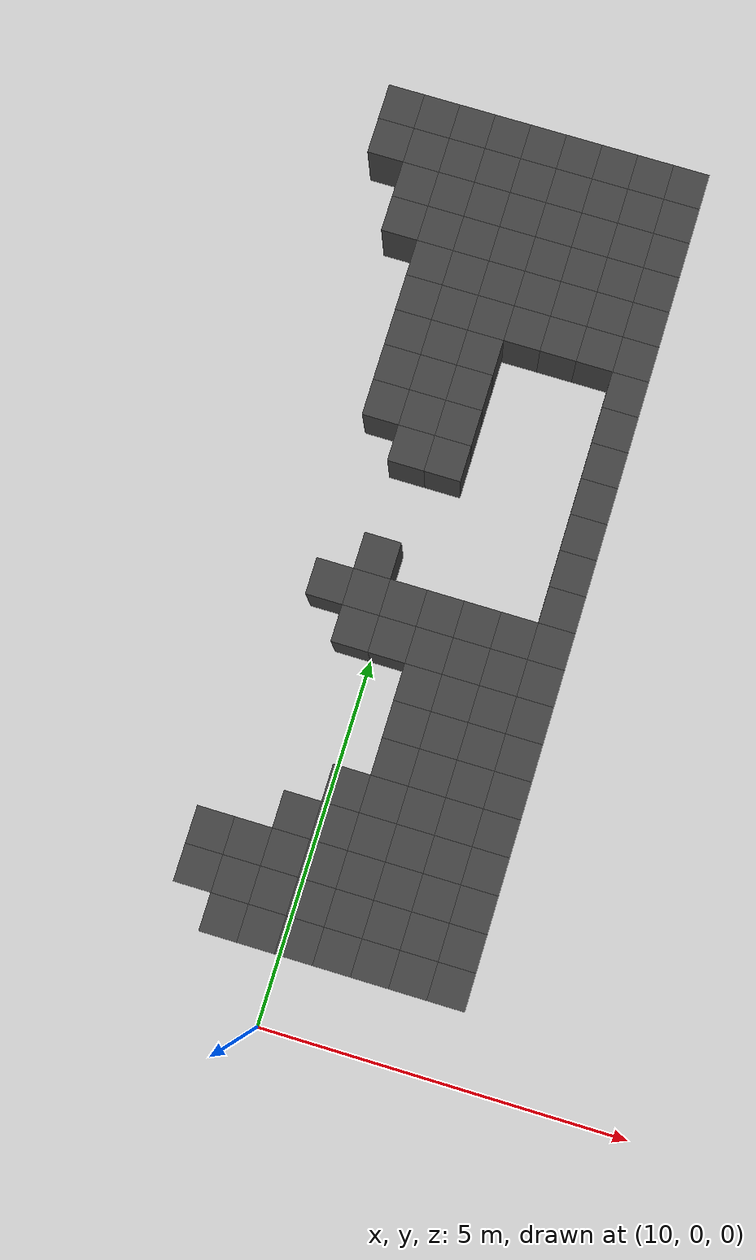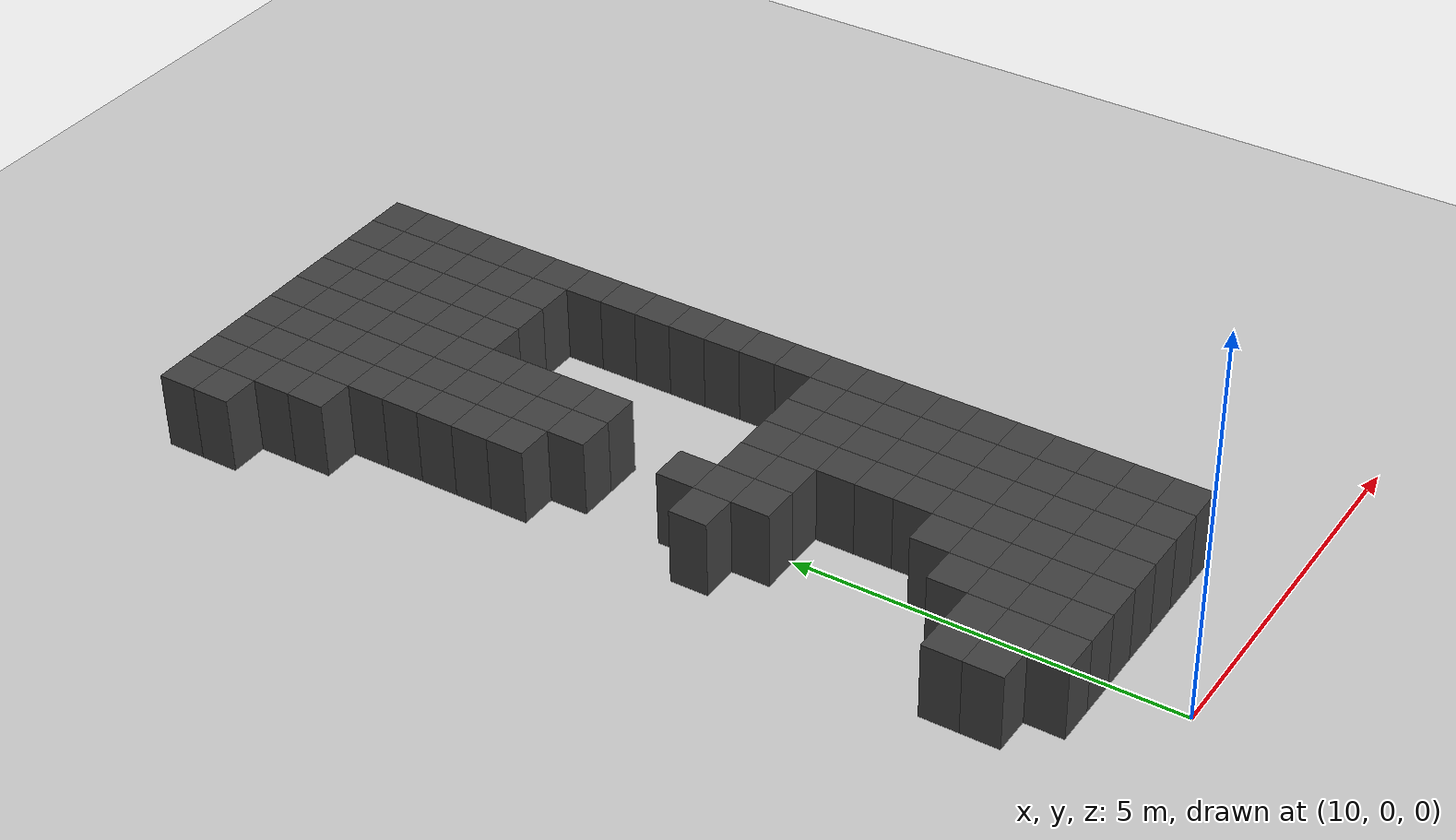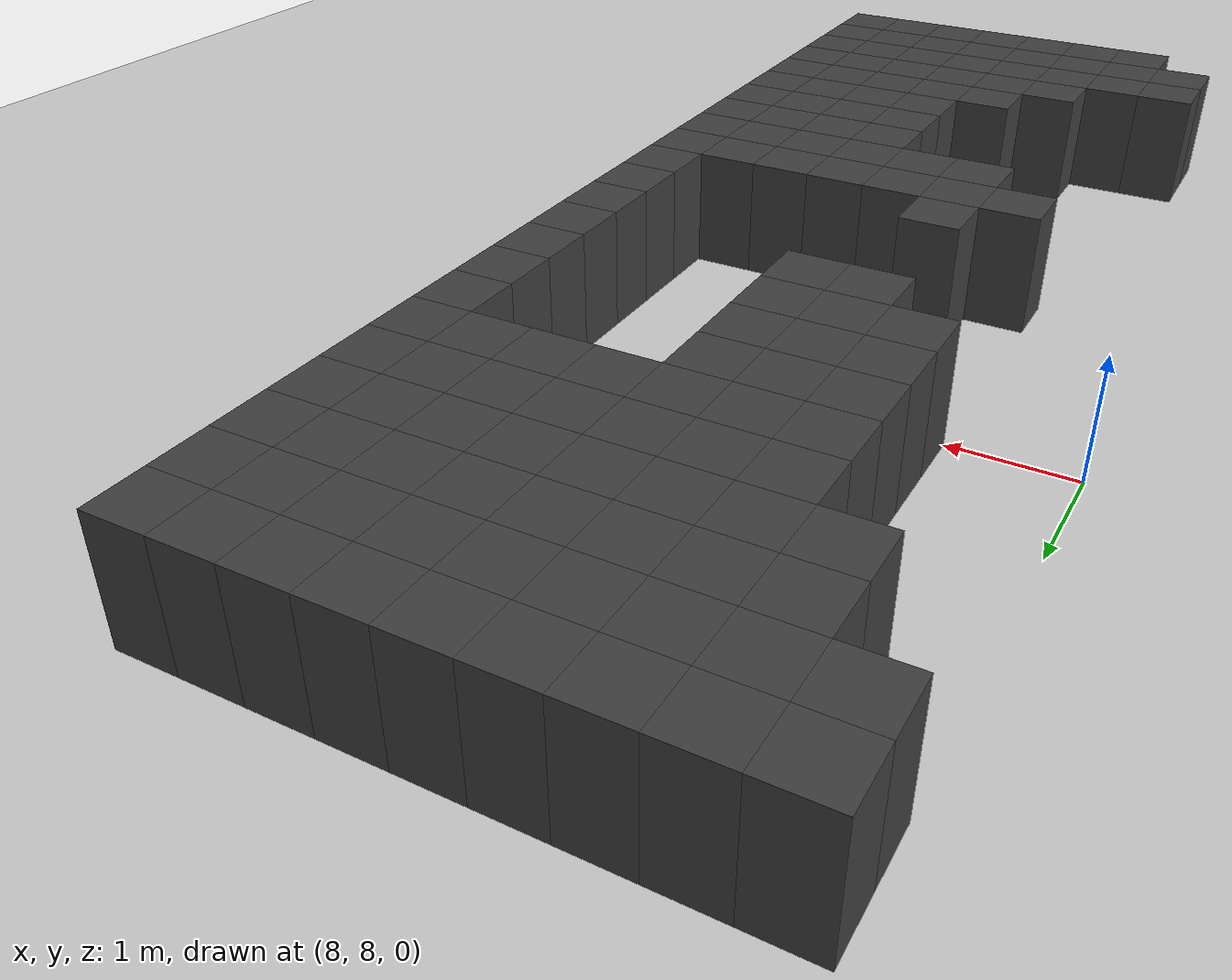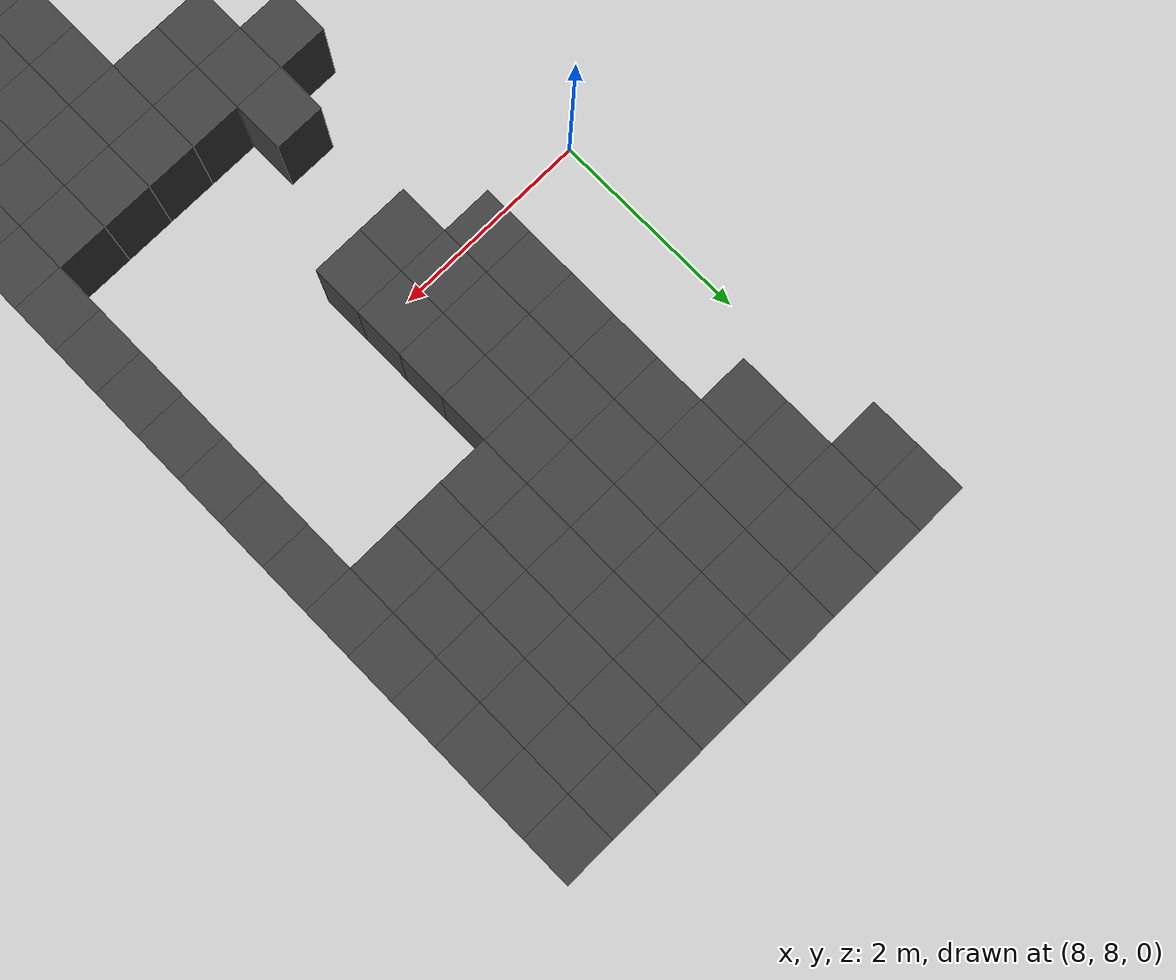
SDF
<sdf version="1.7">
 <world name="map_8658">
  <model name="ground_plane">
   <static>true</static>
   <link name="link">
    <collision name="collision">
     <geometry><plane><normal>0 0 1</normal><size>200 200</size></plane></geometry>
    </collision>
    <visual name="visual">
     <geometry><plane><normal>0 0 1</normal><size>200 200</size></plane></geometry>
     <material><ambient>0.8 0.8 0.8 1</ambient><diffuse>0.8 0.8 0.8 1</diffuse></material>
    </visual>
   </link>
  </model>
  <model name="maze_environment">
   <static>true</static>
   <link name="wall_41">
    <pose>8.250 12.250 0.500 0 0 0</pose>
    <collision name="col"><geometry><box><size>0.5 0.5 1.0</size></box></geometry></collision>
    <visual name="vis">
     <geometry><box><size>0.5 0.5 1.0</size></box></geometry>
     <material><ambient>0.15 0.15 0.15 1</ambient><diffuse>0.25 0.25 0.25 1</diffuse></material>
    </visual>
   </link>
   <link name="wall_42">
    <pose>8.750 12.250 0.500 0 0 0</pose>
    <collision name="col"><geometry><box><size>0.5 0.5 1.0</size></box></geometry></collision>
    <visual name="vis">
     <geometry><box><size>0.5 0.5 1.0</size></box></geometry>
     <material><ambient>0.15 0.15 0.15 1</ambient><diffuse>0.25 0.25 0.25 1</diffuse></material>
    </visual>
   </link>
   <link name="wall_43">
    <pose>9.250 12.250 0.500 0 0 0</pose>
    <collision name="col"><geometry><box><size>0.5 0.5 1.0</size></box></geometry></collision>
    <visual name="vis">
     <geometry><box><size>0.5 0.5 1.0</size></box></geometry>
     <material><ambient>0.15 0.15 0.15 1</ambient><diffuse>0.25 0.25 0.25 1</diffuse></material>
    </visual>
   </link>
   <link name="wall_44">
    <pose>9.750 12.250 0.500 0 0 0</pose>
    <collision name="col"><geometry><box><size>0.5 0.5 1.0</size></box></geometry></collision>
    <visual name="vis">
     <geometry><box><size>0.5 0.5 1.0</size></box></geometry>
     <material><ambient>0.15 0.15 0.15 1</ambient><diffuse>0.25 0.25 0.25 1</diffuse></material>
    </visual>
   </link>
   <link name="wall_45">
    <pose>10.250 12.250 0.500 0 0 0</pose>
    <collision name="col"><geometry><box><size>0.5 0.5 1.0</size></box></geometry></collision>
    <visual name="vis">
     <geometry><box><size>0.5 0.5 1.0</size></box></geometry>
     <material><ambient>0.15 0.15 0.15 1</ambient><diffuse>0.25 0.25 0.25 1</diffuse></material>
    </visual>
   </link>
   <link name="wall_46">
    <pose>10.750 12.250 0.500 0 0 0</pose>
    <collision name="col"><geometry><box><size>0.5 0.5 1.0</size></box></geometry></collision>
    <visual name="vis">
     <geometry><box><size>0.5 0.5 1.0</size></box></geometry>
     <material><ambient>0.15 0.15 0.15 1</ambient><diffuse>0.25 0.25 0.25 1</diffuse></material>
    </visual>
   </link>
   <link name="wall_47">
    <pose>11.250 12.250 0.500 0 0 0</pose>
    <collision name="col"><geometry><box><size>0.5 0.5 1.0</size></box></geometry></collision>
    <visual name="vis">
     <geometry><box><size>0.5 0.5 1.0</size></box></geometry>
     <material><ambient>0.15 0.15 0.15 1</ambient><diffuse>0.25 0.25 0.25 1</diffuse></material>
    </visual>
   </link>
   <link name="wall_48">
    <pose>11.750 12.250 0.500 0 0 0</pose>
    <collision name="col"><geometry><box><size>0.5 0.5 1.0</size></box></geometry></collision>
    <visual name="vis">
     <geometry><box><size>0.5 0.5 1.0</size></box></geometry>
     <material><ambient>0.15 0.15 0.15 1</ambient><diffuse>0.25 0.25 0.25 1</diffuse></material>
    </visual>
   </link>
   <link name="wall_49">
    <pose>12.250 12.250 0.500 0 0 0</pose>
    <collision name="col"><geometry><box><size>0.5 0.5 1.0</size></box></geometry></collision>
    <visual name="vis">
     <geometry><box><size>0.5 0.5 1.0</size></box></geometry>
     <material><ambient>0.15 0.15 0.15 1</ambient><diffuse>0.25 0.25 0.25 1</diffuse></material>
    </visual>
   </link>
   <link name="wall_74">
    <pose>8.250 11.750 0.500 0 0 0</pose>
    <collision name="col"><geometry><box><size>0.5 0.5 1.0</size></box></geometry></collision>
    <visual name="vis">
     <geometry><box><size>0.5 0.5 1.0</size></box></geometry>
     <material><ambient>0.15 0.15 0.15 1</ambient><diffuse>0.25 0.25 0.25 1</diffuse></material>
    </visual>
   </link>
   <link name="wall_75">
    <pose>8.750 11.750 0.500 0 0 0</pose>
    <collision name="col"><geometry><box><size>0.5 0.5 1.0</size></box></geometry></collision>
    <visual name="vis">
     <geometry><box><size>0.5 0.5 1.0</size></box></geometry>
     <material><ambient>0.15 0.15 0.15 1</ambient><diffuse>0.25 0.25 0.25 1</diffuse></material>
    </visual>
   </link>
   <link name="wall_76">
    <pose>9.250 11.750 0.500 0 0 0</pose>
    <collision name="col"><geometry><box><size>0.5 0.5 1.0</size></box></geometry></collision>
    <visual name="vis">
     <geometry><box><size>0.5 0.5 1.0</size></box></geometry>
     <material><ambient>0.15 0.15 0.15 1</ambient><diffuse>0.25 0.25 0.25 1</diffuse></material>
    </visual>
   </link>
   <link name="wall_77">
    <pose>9.750 11.750 0.500 0 0 0</pose>
    <collision name="col"><geometry><box><size>0.5 0.5 1.0</size></box></geometry></collision>
    <visual name="vis">
     <geometry><box><size>0.5 0.5 1.0</size></box></geometry>
     <material><ambient>0.15 0.15 0.15 1</ambient><diffuse>0.25 0.25 0.25 1</diffuse></material>
    </visual>
   </link>
   <link name="wall_78">
    <pose>10.250 11.750 0.500 0 0 0</pose>
    <collision name="col"><geometry><box><size>0.5 0.5 1.0</size></box></geometry></collision>
    <visual name="vis">
     <geometry><box><size>0.5 0.5 1.0</size></box></geometry>
     <material><ambient>0.15 0.15 0.15 1</ambient><diffuse>0.25 0.25 0.25 1</diffuse></material>
    </visual>
   </link>
   <link name="wall_79">
    <pose>10.750 11.750 0.500 0 0 0</pose>
    <collision name="col"><geometry><box><size>0.5 0.5 1.0</size></box></geometry></collision>
    <visual name="vis">
     <geometry><box><size>0.5 0.5 1.0</size></box></geometry>
     <material><ambient>0.15 0.15 0.15 1</ambient><diffuse>0.25 0.25 0.25 1</diffuse></material>
    </visual>
   </link>
   <link name="wall_80">
    <pose>11.250 11.750 0.500 0 0 0</pose>
    <collision name="col"><geometry><box><size>0.5 0.5 1.0</size></box></geometry></collision>
    <visual name="vis">
     <geometry><box><size>0.5 0.5 1.0</size></box></geometry>
     <material><ambient>0.15 0.15 0.15 1</ambient><diffuse>0.25 0.25 0.25 1</diffuse></material>
    </visual>
   </link>
   <link name="wall_81">
    <pose>11.750 11.750 0.500 0 0 0</pose>
    <collision name="col"><geometry><box><size>0.5 0.5 1.0</size></box></geometry></collision>
    <visual name="vis">
     <geometry><box><size>0.5 0.5 1.0</size></box></geometry>
     <material><ambient>0.15 0.15 0.15 1</ambient><diffuse>0.25 0.25 0.25 1</diffuse></material>
    </visual>
   </link>
   <link name="wall_82">
    <pose>12.250 11.750 0.500 0 0 0</pose>
    <collision name="col"><geometry><box><size>0.5 0.5 1.0</size></box></geometry></collision>
    <visual name="vis">
     <geometry><box><size>0.5 0.5 1.0</size></box></geometry>
     <material><ambient>0.15 0.15 0.15 1</ambient><diffuse>0.25 0.25 0.25 1</diffuse></material>
    </visual>
   </link>
   <link name="wall_98">
    <pose>8.750 11.250 0.500 0 0 0</pose>
    <collision name="col"><geometry><box><size>0.5 0.5 1.0</size></box></geometry></collision>
    <visual name="vis">
     <geometry><box><size>0.5 0.5 1.0</size></box></geometry>
     <material><ambient>0.15 0.15 0.15 1</ambient><diffuse>0.25 0.25 0.25 1</diffuse></material>
    </visual>
   </link>
   <link name="wall_99">
    <pose>9.250 11.250 0.500 0 0 0</pose>
    <collision name="col"><geometry><box><size>0.5 0.5 1.0</size></box></geometry></collision>
    <visual name="vis">
     <geometry><box><size>0.5 0.5 1.0</size></box></geometry>
     <material><ambient>0.15 0.15 0.15 1</ambient><diffuse>0.25 0.25 0.25 1</diffuse></material>
    </visual>
   </link>
   <link name="wall_100">
    <pose>9.750 11.250 0.500 0 0 0</pose>
    <collision name="col"><geometry><box><size>0.5 0.5 1.0</size></box></geometry></collision>
    <visual name="vis">
     <geometry><box><size>0.5 0.5 1.0</size></box></geometry>
     <material><ambient>0.15 0.15 0.15 1</ambient><diffuse>0.25 0.25 0.25 1</diffuse></material>
    </visual>
   </link>
   <link name="wall_101">
    <pose>10.250 11.250 0.500 0 0 0</pose>
    <collision name="col"><geometry><box><size>0.5 0.5 1.0</size></box></geometry></collision>
    <visual name="vis">
     <geometry><box><size>0.5 0.5 1.0</size></box></geometry>
     <material><ambient>0.15 0.15 0.15 1</ambient><diffuse>0.25 0.25 0.25 1</diffuse></material>
    </visual>
   </link>
   <link name="wall_102">
    <pose>10.750 11.250 0.500 0 0 0</pose>
    <collision name="col"><geometry><box><size>0.5 0.5 1.0</size></box></geometry></collision>
    <visual name="vis">
     <geometry><box><size>0.5 0.5 1.0</size></box></geometry>
     <material><ambient>0.15 0.15 0.15 1</ambient><diffuse>0.25 0.25 0.25 1</diffuse></material>
    </visual>
   </link>
   <link name="wall_103">
    <pose>11.250 11.250 0.500 0 0 0</pose>
    <collision name="col"><geometry><box><size>0.5 0.5 1.0</size></box></geometry></collision>
    <visual name="vis">
     <geometry><box><size>0.5 0.5 1.0</size></box></geometry>
     <material><ambient>0.15 0.15 0.15 1</ambient><diffuse>0.25 0.25 0.25 1</diffuse></material>
    </visual>
   </link>
   <link name="wall_104">
    <pose>11.750 11.250 0.500 0 0 0</pose>
    <collision name="col"><geometry><box><size>0.5 0.5 1.0</size></box></geometry></collision>
    <visual name="vis">
     <geometry><box><size>0.5 0.5 1.0</size></box></geometry>
     <material><ambient>0.15 0.15 0.15 1</ambient><diffuse>0.25 0.25 0.25 1</diffuse></material>
    </visual>
   </link>
   <link name="wall_105">
    <pose>12.250 11.250 0.500 0 0 0</pose>
    <collision name="col"><geometry><box><size>0.5 0.5 1.0</size></box></geometry></collision>
    <visual name="vis">
     <geometry><box><size>0.5 0.5 1.0</size></box></geometry>
     <material><ambient>0.15 0.15 0.15 1</ambient><diffuse>0.25 0.25 0.25 1</diffuse></material>
    </visual>
   </link>
   <link name="wall_115">
    <pose>8.750 10.750 0.500 0 0 0</pose>
    <collision name="col"><geometry><box><size>0.5 0.5 1.0</size></box></geometry></collision>
    <visual name="vis">
     <geometry><box><size>0.5 0.5 1.0</size></box></geometry>
     <material><ambient>0.15 0.15 0.15 1</ambient><diffuse>0.25 0.25 0.25 1</diffuse></material>
    </visual>
   </link>
   <link name="wall_116">
    <pose>9.250 10.750 0.500 0 0 0</pose>
    <collision name="col"><geometry><box><size>0.5 0.5 1.0</size></box></geometry></collision>
    <visual name="vis">
     <geometry><box><size>0.5 0.5 1.0</size></box></geometry>
     <material><ambient>0.15 0.15 0.15 1</ambient><diffuse>0.25 0.25 0.25 1</diffuse></material>
    </visual>
   </link>
   <link name="wall_117">
    <pose>9.750 10.750 0.500 0 0 0</pose>
    <collision name="col"><geometry><box><size>0.5 0.5 1.0</size></box></geometry></collision>
    <visual name="vis">
     <geometry><box><size>0.5 0.5 1.0</size></box></geometry>
     <material><ambient>0.15 0.15 0.15 1</ambient><diffuse>0.25 0.25 0.25 1</diffuse></material>
    </visual>
   </link>
   <link name="wall_118">
    <pose>10.250 10.750 0.500 0 0 0</pose>
    <collision name="col"><geometry><box><size>0.5 0.5 1.0</size></box></geometry></collision>
    <visual name="vis">
     <geometry><box><size>0.5 0.5 1.0</size></box></geometry>
     <material><ambient>0.15 0.15 0.15 1</ambient><diffuse>0.25 0.25 0.25 1</diffuse></material>
    </visual>
   </link>
   <link name="wall_119">
    <pose>10.750 10.750 0.500 0 0 0</pose>
    <collision name="col"><geometry><box><size>0.5 0.5 1.0</size></box></geometry></collision>
    <visual name="vis">
     <geometry><box><size>0.5 0.5 1.0</size></box></geometry>
     <material><ambient>0.15 0.15 0.15 1</ambient><diffuse>0.25 0.25 0.25 1</diffuse></material>
    </visual>
   </link>
   <link name="wall_120">
    <pose>11.250 10.750 0.500 0 0 0</pose>
    <collision name="col"><geometry><box><size>0.5 0.5 1.0</size></box></geometry></collision>
    <visual name="vis">
     <geometry><box><size>0.5 0.5 1.0</size></box></geometry>
     <material><ambient>0.15 0.15 0.15 1</ambient><diffuse>0.25 0.25 0.25 1</diffuse></material>
    </visual>
   </link>
   <link name="wall_121">
    <pose>11.750 10.750 0.500 0 0 0</pose>
    <collision name="col"><geometry><box><size>0.5 0.5 1.0</size></box></geometry></collision>
    <visual name="vis">
     <geometry><box><size>0.5 0.5 1.0</size></box></geometry>
     <material><ambient>0.15 0.15 0.15 1</ambient><diffuse>0.25 0.25 0.25 1</diffuse></material>
    </visual>
   </link>
   <link name="wall_122">
    <pose>12.250 10.750 0.500 0 0 0</pose>
    <collision name="col"><geometry><box><size>0.5 0.5 1.0</size></box></geometry></collision>
    <visual name="vis">
     <geometry><box><size>0.5 0.5 1.0</size></box></geometry>
     <material><ambient>0.15 0.15 0.15 1</ambient><diffuse>0.25 0.25 0.25 1</diffuse></material>
    </visual>
   </link>
   <link name="wall_129">
    <pose>9.250 10.250 0.500 0 0 0</pose>
    <collision name="col"><geometry><box><size>0.5 0.5 1.0</size></box></geometry></collision>
    <visual name="vis">
     <geometry><box><size>0.5 0.5 1.0</size></box></geometry>
     <material><ambient>0.15 0.15 0.15 1</ambient><diffuse>0.25 0.25 0.25 1</diffuse></material>
    </visual>
   </link>
   <link name="wall_130">
    <pose>9.750 10.250 0.500 0 0 0</pose>
    <collision name="col"><geometry><box><size>0.5 0.5 1.0</size></box></geometry></collision>
    <visual name="vis">
     <geometry><box><size>0.5 0.5 1.0</size></box></geometry>
     <material><ambient>0.15 0.15 0.15 1</ambient><diffuse>0.25 0.25 0.25 1</diffuse></material>
    </visual>
   </link>
   <link name="wall_131">
    <pose>10.250 10.250 0.500 0 0 0</pose>
    <collision name="col"><geometry><box><size>0.5 0.5 1.0</size></box></geometry></collision>
    <visual name="vis">
     <geometry><box><size>0.5 0.5 1.0</size></box></geometry>
     <material><ambient>0.15 0.15 0.15 1</ambient><diffuse>0.25 0.25 0.25 1</diffuse></material>
    </visual>
   </link>
   <link name="wall_132">
    <pose>10.750 10.250 0.500 0 0 0</pose>
    <collision name="col"><geometry><box><size>0.5 0.5 1.0</size></box></geometry></collision>
    <visual name="vis">
     <geometry><box><size>0.5 0.5 1.0</size></box></geometry>
     <material><ambient>0.15 0.15 0.15 1</ambient><diffuse>0.25 0.25 0.25 1</diffuse></material>
    </visual>
   </link>
   <link name="wall_133">
    <pose>11.250 10.250 0.500 0 0 0</pose>
    <collision name="col"><geometry><box><size>0.5 0.5 1.0</size></box></geometry></collision>
    <visual name="vis">
     <geometry><box><size>0.5 0.5 1.0</size></box></geometry>
     <material><ambient>0.15 0.15 0.15 1</ambient><diffuse>0.25 0.25 0.25 1</diffuse></material>
    </visual>
   </link>
   <link name="wall_134">
    <pose>11.750 10.250 0.500 0 0 0</pose>
    <collision name="col"><geometry><box><size>0.5 0.5 1.0</size></box></geometry></collision>
    <visual name="vis">
     <geometry><box><size>0.5 0.5 1.0</size></box></geometry>
     <material><ambient>0.15 0.15 0.15 1</ambient><diffuse>0.25 0.25 0.25 1</diffuse></material>
    </visual>
   </link>
   <link name="wall_135">
    <pose>12.250 10.250 0.500 0 0 0</pose>
    <collision name="col"><geometry><box><size>0.5 0.5 1.0</size></box></geometry></collision>
    <visual name="vis">
     <geometry><box><size>0.5 0.5 1.0</size></box></geometry>
     <material><ambient>0.15 0.15 0.15 1</ambient><diffuse>0.25 0.25 0.25 1</diffuse></material>
    </visual>
   </link>
   <link name="wall_145">
    <pose>9.250 9.750 0.500 0 0 0</pose>
    <collision name="col"><geometry><box><size>0.5 0.5 1.0</size></box></geometry></collision>
    <visual name="vis">
     <geometry><box><size>0.5 0.5 1.0</size></box></geometry>
     <material><ambient>0.15 0.15 0.15 1</ambient><diffuse>0.25 0.25 0.25 1</diffuse></material>
    </visual>
   </link>
   <link name="wall_146">
    <pose>9.750 9.750 0.500 0 0 0</pose>
    <collision name="col"><geometry><box><size>0.5 0.5 1.0</size></box></geometry></collision>
    <visual name="vis">
     <geometry><box><size>0.5 0.5 1.0</size></box></geometry>
     <material><ambient>0.15 0.15 0.15 1</ambient><diffuse>0.25 0.25 0.25 1</diffuse></material>
    </visual>
   </link>
   <link name="wall_147">
    <pose>10.250 9.750 0.500 0 0 0</pose>
    <collision name="col"><geometry><box><size>0.5 0.5 1.0</size></box></geometry></collision>
    <visual name="vis">
     <geometry><box><size>0.5 0.5 1.0</size></box></geometry>
     <material><ambient>0.15 0.15 0.15 1</ambient><diffuse>0.25 0.25 0.25 1</diffuse></material>
    </visual>
   </link>
   <link name="wall_148">
    <pose>10.750 9.750 0.500 0 0 0</pose>
    <collision name="col"><geometry><box><size>0.5 0.5 1.0</size></box></geometry></collision>
    <visual name="vis">
     <geometry><box><size>0.5 0.5 1.0</size></box></geometry>
     <material><ambient>0.15 0.15 0.15 1</ambient><diffuse>0.25 0.25 0.25 1</diffuse></material>
    </visual>
   </link>
   <link name="wall_149">
    <pose>11.250 9.750 0.500 0 0 0</pose>
    <collision name="col"><geometry><box><size>0.5 0.5 1.0</size></box></geometry></collision>
    <visual name="vis">
     <geometry><box><size>0.5 0.5 1.0</size></box></geometry>
     <material><ambient>0.15 0.15 0.15 1</ambient><diffuse>0.25 0.25 0.25 1</diffuse></material>
    </visual>
   </link>
   <link name="wall_150">
    <pose>11.750 9.750 0.500 0 0 0</pose>
    <collision name="col"><geometry><box><size>0.5 0.5 1.0</size></box></geometry></collision>
    <visual name="vis">
     <geometry><box><size>0.5 0.5 1.0</size></box></geometry>
     <material><ambient>0.15 0.15 0.15 1</ambient><diffuse>0.25 0.25 0.25 1</diffuse></material>
    </visual>
   </link>
   <link name="wall_151">
    <pose>12.250 9.750 0.500 0 0 0</pose>
    <collision name="col"><geometry><box><size>0.5 0.5 1.0</size></box></geometry></collision>
    <visual name="vis">
     <geometry><box><size>0.5 0.5 1.0</size></box></geometry>
     <material><ambient>0.15 0.15 0.15 1</ambient><diffuse>0.25 0.25 0.25 1</diffuse></material>
    </visual>
   </link>
   <link name="wall_165">
    <pose>9.250 9.250 0.500 0 0 0</pose>
    <collision name="col"><geometry><box><size>0.5 0.5 1.0</size></box></geometry></collision>
    <visual name="vis">
     <geometry><box><size>0.5 0.5 1.0</size></box></geometry>
     <material><ambient>0.15 0.15 0.15 1</ambient><diffuse>0.25 0.25 0.25 1</diffuse></material>
    </visual>
   </link>
   <link name="wall_166">
    <pose>9.750 9.250 0.500 0 0 0</pose>
    <collision name="col"><geometry><box><size>0.5 0.5 1.0</size></box></geometry></collision>
    <visual name="vis">
     <geometry><box><size>0.5 0.5 1.0</size></box></geometry>
     <material><ambient>0.15 0.15 0.15 1</ambient><diffuse>0.25 0.25 0.25 1</diffuse></material>
    </visual>
   </link>
   <link name="wall_167">
    <pose>10.250 9.250 0.500 0 0 0</pose>
    <collision name="col"><geometry><box><size>0.5 0.5 1.0</size></box></geometry></collision>
    <visual name="vis">
     <geometry><box><size>0.5 0.5 1.0</size></box></geometry>
     <material><ambient>0.15 0.15 0.15 1</ambient><diffuse>0.25 0.25 0.25 1</diffuse></material>
    </visual>
   </link>
   <link name="wall_168">
    <pose>12.250 9.250 0.500 0 0 0</pose>
    <collision name="col"><geometry><box><size>0.5 0.5 1.0</size></box></geometry></collision>
    <visual name="vis">
     <geometry><box><size>0.5 0.5 1.0</size></box></geometry>
     <material><ambient>0.15 0.15 0.15 1</ambient><diffuse>0.25 0.25 0.25 1</diffuse></material>
    </visual>
   </link>
   <link name="wall_184">
    <pose>9.250 8.750 0.500 0 0 0</pose>
    <collision name="col"><geometry><box><size>0.5 0.5 1.0</size></box></geometry></collision>
    <visual name="vis">
     <geometry><box><size>0.5 0.5 1.0</size></box></geometry>
     <material><ambient>0.15 0.15 0.15 1</ambient><diffuse>0.25 0.25 0.25 1</diffuse></material>
    </visual>
   </link>
   <link name="wall_185">
    <pose>9.750 8.750 0.500 0 0 0</pose>
    <collision name="col"><geometry><box><size>0.5 0.5 1.0</size></box></geometry></collision>
    <visual name="vis">
     <geometry><box><size>0.5 0.5 1.0</size></box></geometry>
     <material><ambient>0.15 0.15 0.15 1</ambient><diffuse>0.25 0.25 0.25 1</diffuse></material>
    </visual>
   </link>
   <link name="wall_186">
    <pose>10.250 8.750 0.500 0 0 0</pose>
    <collision name="col"><geometry><box><size>0.5 0.5 1.0</size></box></geometry></collision>
    <visual name="vis">
     <geometry><box><size>0.5 0.5 1.0</size></box></geometry>
     <material><ambient>0.15 0.15 0.15 1</ambient><diffuse>0.25 0.25 0.25 1</diffuse></material>
    </visual>
   </link>
   <link name="wall_187">
    <pose>12.250 8.750 0.500 0 0 0</pose>
    <collision name="col"><geometry><box><size>0.5 0.5 1.0</size></box></geometry></collision>
    <visual name="vis">
     <geometry><box><size>0.5 0.5 1.0</size></box></geometry>
     <material><ambient>0.15 0.15 0.15 1</ambient><diffuse>0.25 0.25 0.25 1</diffuse></material>
    </visual>
   </link>
   <link name="wall_206">
    <pose>9.250 8.250 0.500 0 0 0</pose>
    <collision name="col"><geometry><box><size>0.5 0.5 1.0</size></box></geometry></collision>
    <visual name="vis">
     <geometry><box><size>0.5 0.5 1.0</size></box></geometry>
     <material><ambient>0.15 0.15 0.15 1</ambient><diffuse>0.25 0.25 0.25 1</diffuse></material>
    </visual>
   </link>
   <link name="wall_207">
    <pose>9.750 8.250 0.500 0 0 0</pose>
    <collision name="col"><geometry><box><size>0.5 0.5 1.0</size></box></geometry></collision>
    <visual name="vis">
     <geometry><box><size>0.5 0.5 1.0</size></box></geometry>
     <material><ambient>0.15 0.15 0.15 1</ambient><diffuse>0.25 0.25 0.25 1</diffuse></material>
    </visual>
   </link>
   <link name="wall_208">
    <pose>10.250 8.250 0.500 0 0 0</pose>
    <collision name="col"><geometry><box><size>0.5 0.5 1.0</size></box></geometry></collision>
    <visual name="vis">
     <geometry><box><size>0.5 0.5 1.0</size></box></geometry>
     <material><ambient>0.15 0.15 0.15 1</ambient><diffuse>0.25 0.25 0.25 1</diffuse></material>
    </visual>
   </link>
   <link name="wall_209">
    <pose>12.250 8.250 0.500 0 0 0</pose>
    <collision name="col"><geometry><box><size>0.5 0.5 1.0</size></box></geometry></collision>
    <visual name="vis">
     <geometry><box><size>0.5 0.5 1.0</size></box></geometry>
     <material><ambient>0.15 0.15 0.15 1</ambient><diffuse>0.25 0.25 0.25 1</diffuse></material>
    </visual>
   </link>
   <link name="wall_228">
    <pose>9.750 7.750 0.500 0 0 0</pose>
    <collision name="col"><geometry><box><size>0.5 0.5 1.0</size></box></geometry></collision>
    <visual name="vis">
     <geometry><box><size>0.5 0.5 1.0</size></box></geometry>
     <material><ambient>0.15 0.15 0.15 1</ambient><diffuse>0.25 0.25 0.25 1</diffuse></material>
    </visual>
   </link>
   <link name="wall_229">
    <pose>10.250 7.750 0.500 0 0 0</pose>
    <collision name="col"><geometry><box><size>0.5 0.5 1.0</size></box></geometry></collision>
    <visual name="vis">
     <geometry><box><size>0.5 0.5 1.0</size></box></geometry>
     <material><ambient>0.15 0.15 0.15 1</ambient><diffuse>0.25 0.25 0.25 1</diffuse></material>
    </visual>
   </link>
   <link name="wall_230">
    <pose>12.250 7.750 0.500 0 0 0</pose>
    <collision name="col"><geometry><box><size>0.5 0.5 1.0</size></box></geometry></collision>
    <visual name="vis">
     <geometry><box><size>0.5 0.5 1.0</size></box></geometry>
     <material><ambient>0.15 0.15 0.15 1</ambient><diffuse>0.25 0.25 0.25 1</diffuse></material>
    </visual>
   </link>
   <link name="wall_248">
    <pose>12.250 7.250 0.500 0 0 0</pose>
    <collision name="col"><geometry><box><size>0.5 0.5 1.0</size></box></geometry></collision>
    <visual name="vis">
     <geometry><box><size>0.5 0.5 1.0</size></box></geometry>
     <material><ambient>0.15 0.15 0.15 1</ambient><diffuse>0.25 0.25 0.25 1</diffuse></material>
    </visual>
   </link>
   <link name="wall_264">
    <pose>12.250 6.750 0.500 0 0 0</pose>
    <collision name="col"><geometry><box><size>0.5 0.5 1.0</size></box></geometry></collision>
    <visual name="vis">
     <geometry><box><size>0.5 0.5 1.0</size></box></geometry>
     <material><ambient>0.15 0.15 0.15 1</ambient><diffuse>0.25 0.25 0.25 1</diffuse></material>
    </visual>
   </link>
   <link name="wall_283">
    <pose>9.750 6.250 0.500 0 0 0</pose>
    <collision name="col"><geometry><box><size>0.5 0.5 1.0</size></box></geometry></collision>
    <visual name="vis">
     <geometry><box><size>0.5 0.5 1.0</size></box></geometry>
     <material><ambient>0.15 0.15 0.15 1</ambient><diffuse>0.25 0.25 0.25 1</diffuse></material>
    </visual>
   </link>
   <link name="wall_284">
    <pose>12.250 6.250 0.500 0 0 0</pose>
    <collision name="col"><geometry><box><size>0.5 0.5 1.0</size></box></geometry></collision>
    <visual name="vis">
     <geometry><box><size>0.5 0.5 1.0</size></box></geometry>
     <material><ambient>0.15 0.15 0.15 1</ambient><diffuse>0.25 0.25 0.25 1</diffuse></material>
    </visual>
   </link>
   <link name="wall_308">
    <pose>9.250 5.750 0.500 0 0 0</pose>
    <collision name="col"><geometry><box><size>0.5 0.5 1.0</size></box></geometry></collision>
    <visual name="vis">
     <geometry><box><size>0.5 0.5 1.0</size></box></geometry>
     <material><ambient>0.15 0.15 0.15 1</ambient><diffuse>0.25 0.25 0.25 1</diffuse></material>
    </visual>
   </link>
   <link name="wall_309">
    <pose>9.750 5.750 0.500 0 0 0</pose>
    <collision name="col"><geometry><box><size>0.5 0.5 1.0</size></box></geometry></collision>
    <visual name="vis">
     <geometry><box><size>0.5 0.5 1.0</size></box></geometry>
     <material><ambient>0.15 0.15 0.15 1</ambient><diffuse>0.25 0.25 0.25 1</diffuse></material>
    </visual>
   </link>
   <link name="wall_310">
    <pose>10.250 5.750 0.500 0 0 0</pose>
    <collision name="col"><geometry><box><size>0.5 0.5 1.0</size></box></geometry></collision>
    <visual name="vis">
     <geometry><box><size>0.5 0.5 1.0</size></box></geometry>
     <material><ambient>0.15 0.15 0.15 1</ambient><diffuse>0.25 0.25 0.25 1</diffuse></material>
    </visual>
   </link>
   <link name="wall_311">
    <pose>10.750 5.750 0.500 0 0 0</pose>
    <collision name="col"><geometry><box><size>0.5 0.5 1.0</size></box></geometry></collision>
    <visual name="vis">
     <geometry><box><size>0.5 0.5 1.0</size></box></geometry>
     <material><ambient>0.15 0.15 0.15 1</ambient><diffuse>0.25 0.25 0.25 1</diffuse></material>
    </visual>
   </link>
   <link name="wall_312">
    <pose>11.250 5.750 0.500 0 0 0</pose>
    <collision name="col"><geometry><box><size>0.5 0.5 1.0</size></box></geometry></collision>
    <visual name="vis">
     <geometry><box><size>0.5 0.5 1.0</size></box></geometry>
     <material><ambient>0.15 0.15 0.15 1</ambient><diffuse>0.25 0.25 0.25 1</diffuse></material>
    </visual>
   </link>
   <link name="wall_313">
    <pose>11.750 5.750 0.500 0 0 0</pose>
    <collision name="col"><geometry><box><size>0.5 0.5 1.0</size></box></geometry></collision>
    <visual name="vis">
     <geometry><box><size>0.5 0.5 1.0</size></box></geometry>
     <material><ambient>0.15 0.15 0.15 1</ambient><diffuse>0.25 0.25 0.25 1</diffuse></material>
    </visual>
   </link>
   <link name="wall_314">
    <pose>12.250 5.750 0.500 0 0 0</pose>
    <collision name="col"><geometry><box><size>0.5 0.5 1.0</size></box></geometry></collision>
    <visual name="vis">
     <geometry><box><size>0.5 0.5 1.0</size></box></geometry>
     <material><ambient>0.15 0.15 0.15 1</ambient><diffuse>0.25 0.25 0.25 1</diffuse></material>
    </visual>
   </link>
   <link name="wall_341">
    <pose>9.750 5.250 0.500 0 0 0</pose>
    <collision name="col"><geometry><box><size>0.5 0.5 1.0</size></box></geometry></collision>
    <visual name="vis">
     <geometry><box><size>0.5 0.5 1.0</size></box></geometry>
     <material><ambient>0.15 0.15 0.15 1</ambient><diffuse>0.25 0.25 0.25 1</diffuse></material>
    </visual>
   </link>
   <link name="wall_342">
    <pose>10.250 5.250 0.500 0 0 0</pose>
    <collision name="col"><geometry><box><size>0.5 0.5 1.0</size></box></geometry></collision>
    <visual name="vis">
     <geometry><box><size>0.5 0.5 1.0</size></box></geometry>
     <material><ambient>0.15 0.15 0.15 1</ambient><diffuse>0.25 0.25 0.25 1</diffuse></material>
    </visual>
   </link>
   <link name="wall_343">
    <pose>10.750 5.250 0.500 0 0 0</pose>
    <collision name="col"><geometry><box><size>0.5 0.5 1.0</size></box></geometry></collision>
    <visual name="vis">
     <geometry><box><size>0.5 0.5 1.0</size></box></geometry>
     <material><ambient>0.15 0.15 0.15 1</ambient><diffuse>0.25 0.25 0.25 1</diffuse></material>
    </visual>
   </link>
   <link name="wall_344">
    <pose>11.250 5.250 0.500 0 0 0</pose>
    <collision name="col"><geometry><box><size>0.5 0.5 1.0</size></box></geometry></collision>
    <visual name="vis">
     <geometry><box><size>0.5 0.5 1.0</size></box></geometry>
     <material><ambient>0.15 0.15 0.15 1</ambient><diffuse>0.25 0.25 0.25 1</diffuse></material>
    </visual>
   </link>
   <link name="wall_345">
    <pose>11.750 5.250 0.500 0 0 0</pose>
    <collision name="col"><geometry><box><size>0.5 0.5 1.0</size></box></geometry></collision>
    <visual name="vis">
     <geometry><box><size>0.5 0.5 1.0</size></box></geometry>
     <material><ambient>0.15 0.15 0.15 1</ambient><diffuse>0.25 0.25 0.25 1</diffuse></material>
    </visual>
   </link>
   <link name="wall_346">
    <pose>12.250 5.250 0.500 0 0 0</pose>
    <collision name="col"><geometry><box><size>0.5 0.5 1.0</size></box></geometry></collision>
    <visual name="vis">
     <geometry><box><size>0.5 0.5 1.0</size></box></geometry>
     <material><ambient>0.15 0.15 0.15 1</ambient><diffuse>0.25 0.25 0.25 1</diffuse></material>
    </visual>
   </link>
   <link name="wall_365">
    <pose>10.750 4.750 0.500 0 0 0</pose>
    <collision name="col"><geometry><box><size>0.5 0.5 1.0</size></box></geometry></collision>
    <visual name="vis">
     <geometry><box><size>0.5 0.5 1.0</size></box></geometry>
     <material><ambient>0.15 0.15 0.15 1</ambient><diffuse>0.25 0.25 0.25 1</diffuse></material>
    </visual>
   </link>
   <link name="wall_366">
    <pose>11.250 4.750 0.500 0 0 0</pose>
    <collision name="col"><geometry><box><size>0.5 0.5 1.0</size></box></geometry></collision>
    <visual name="vis">
     <geometry><box><size>0.5 0.5 1.0</size></box></geometry>
     <material><ambient>0.15 0.15 0.15 1</ambient><diffuse>0.25 0.25 0.25 1</diffuse></material>
    </visual>
   </link>
   <link name="wall_367">
    <pose>11.750 4.750 0.500 0 0 0</pose>
    <collision name="col"><geometry><box><size>0.5 0.5 1.0</size></box></geometry></collision>
    <visual name="vis">
     <geometry><box><size>0.5 0.5 1.0</size></box></geometry>
     <material><ambient>0.15 0.15 0.15 1</ambient><diffuse>0.25 0.25 0.25 1</diffuse></material>
    </visual>
   </link>
   <link name="wall_368">
    <pose>12.250 4.750 0.500 0 0 0</pose>
    <collision name="col"><geometry><box><size>0.5 0.5 1.0</size></box></geometry></collision>
    <visual name="vis">
     <geometry><box><size>0.5 0.5 1.0</size></box></geometry>
     <material><ambient>0.15 0.15 0.15 1</ambient><diffuse>0.25 0.25 0.25 1</diffuse></material>
    </visual>
   </link>
   <link name="wall_380">
    <pose>10.750 4.250 0.500 0 0 0</pose>
    <collision name="col"><geometry><box><size>0.5 0.5 1.0</size></box></geometry></collision>
    <visual name="vis">
     <geometry><box><size>0.5 0.5 1.0</size></box></geometry>
     <material><ambient>0.15 0.15 0.15 1</ambient><diffuse>0.25 0.25 0.25 1</diffuse></material>
    </visual>
   </link>
   <link name="wall_381">
    <pose>11.250 4.250 0.500 0 0 0</pose>
    <collision name="col"><geometry><box><size>0.5 0.5 1.0</size></box></geometry></collision>
    <visual name="vis">
     <geometry><box><size>0.5 0.5 1.0</size></box></geometry>
     <material><ambient>0.15 0.15 0.15 1</ambient><diffuse>0.25 0.25 0.25 1</diffuse></material>
    </visual>
   </link>
   <link name="wall_382">
    <pose>11.750 4.250 0.500 0 0 0</pose>
    <collision name="col"><geometry><box><size>0.5 0.5 1.0</size></box></geometry></collision>
    <visual name="vis">
     <geometry><box><size>0.5 0.5 1.0</size></box></geometry>
     <material><ambient>0.15 0.15 0.15 1</ambient><diffuse>0.25 0.25 0.25 1</diffuse></material>
    </visual>
   </link>
   <link name="wall_383">
    <pose>12.250 4.250 0.500 0 0 0</pose>
    <collision name="col"><geometry><box><size>0.5 0.5 1.0</size></box></geometry></collision>
    <visual name="vis">
     <geometry><box><size>0.5 0.5 1.0</size></box></geometry>
     <material><ambient>0.15 0.15 0.15 1</ambient><diffuse>0.25 0.25 0.25 1</diffuse></material>
    </visual>
   </link>
   <link name="wall_388">
    <pose>10.750 3.750 0.500 0 0 0</pose>
    <collision name="col"><geometry><box><size>0.5 0.5 1.0</size></box></geometry></collision>
    <visual name="vis">
     <geometry><box><size>0.5 0.5 1.0</size></box></geometry>
     <material><ambient>0.15 0.15 0.15 1</ambient><diffuse>0.25 0.25 0.25 1</diffuse></material>
    </visual>
   </link>
   <link name="wall_389">
    <pose>11.250 3.750 0.500 0 0 0</pose>
    <collision name="col"><geometry><box><size>0.5 0.5 1.0</size></box></geometry></collision>
    <visual name="vis">
     <geometry><box><size>0.5 0.5 1.0</size></box></geometry>
     <material><ambient>0.15 0.15 0.15 1</ambient><diffuse>0.25 0.25 0.25 1</diffuse></material>
    </visual>
   </link>
   <link name="wall_390">
    <pose>11.750 3.750 0.500 0 0 0</pose>
    <collision name="col"><geometry><box><size>0.5 0.5 1.0</size></box></geometry></collision>
    <visual name="vis">
     <geometry><box><size>0.5 0.5 1.0</size></box></geometry>
     <material><ambient>0.15 0.15 0.15 1</ambient><diffuse>0.25 0.25 0.25 1</diffuse></material>
    </visual>
   </link>
   <link name="wall_391">
    <pose>12.250 3.750 0.500 0 0 0</pose>
    <collision name="col"><geometry><box><size>0.5 0.5 1.0</size></box></geometry></collision>
    <visual name="vis">
     <geometry><box><size>0.5 0.5 1.0</size></box></geometry>
     <material><ambient>0.15 0.15 0.15 1</ambient><diffuse>0.25 0.25 0.25 1</diffuse></material>
    </visual>
   </link>
   <link name="wall_397">
    <pose>10.250 3.250 0.500 0 0 0</pose>
    <collision name="col"><geometry><box><size>0.5 0.5 1.0</size></box></geometry></collision>
    <visual name="vis">
     <geometry><box><size>0.5 0.5 1.0</size></box></geometry>
     <material><ambient>0.15 0.15 0.15 1</ambient><diffuse>0.25 0.25 0.25 1</diffuse></material>
    </visual>
   </link>
   <link name="wall_398">
    <pose>10.750 3.250 0.500 0 0 0</pose>
    <collision name="col"><geometry><box><size>0.5 0.5 1.0</size></box></geometry></collision>
    <visual name="vis">
     <geometry><box><size>0.5 0.5 1.0</size></box></geometry>
     <material><ambient>0.15 0.15 0.15 1</ambient><diffuse>0.25 0.25 0.25 1</diffuse></material>
    </visual>
   </link>
   <link name="wall_399">
    <pose>11.250 3.250 0.500 0 0 0</pose>
    <collision name="col"><geometry><box><size>0.5 0.5 1.0</size></box></geometry></collision>
    <visual name="vis">
     <geometry><box><size>0.5 0.5 1.0</size></box></geometry>
     <material><ambient>0.15 0.15 0.15 1</ambient><diffuse>0.25 0.25 0.25 1</diffuse></material>
    </visual>
   </link>
   <link name="wall_400">
    <pose>11.750 3.250 0.500 0 0 0</pose>
    <collision name="col"><geometry><box><size>0.5 0.5 1.0</size></box></geometry></collision>
    <visual name="vis">
     <geometry><box><size>0.5 0.5 1.0</size></box></geometry>
     <material><ambient>0.15 0.15 0.15 1</ambient><diffuse>0.25 0.25 0.25 1</diffuse></material>
    </visual>
   </link>
   <link name="wall_401">
    <pose>12.250 3.250 0.500 0 0 0</pose>
    <collision name="col"><geometry><box><size>0.5 0.5 1.0</size></box></geometry></collision>
    <visual name="vis">
     <geometry><box><size>0.5 0.5 1.0</size></box></geometry>
     <material><ambient>0.15 0.15 0.15 1</ambient><diffuse>0.25 0.25 0.25 1</diffuse></material>
    </visual>
   </link>
   <link name="wall_411">
    <pose>9.750 2.750 0.500 0 0 0</pose>
    <collision name="col"><geometry><box><size>0.5 0.5 1.0</size></box></geometry></collision>
    <visual name="vis">
     <geometry><box><size>0.5 0.5 1.0</size></box></geometry>
     <material><ambient>0.15 0.15 0.15 1</ambient><diffuse>0.25 0.25 0.25 1</diffuse></material>
    </visual>
   </link>
   <link name="wall_412">
    <pose>10.250 2.750 0.500 0 0 0</pose>
    <collision name="col"><geometry><box><size>0.5 0.5 1.0</size></box></geometry></collision>
    <visual name="vis">
     <geometry><box><size>0.5 0.5 1.0</size></box></geometry>
     <material><ambient>0.15 0.15 0.15 1</ambient><diffuse>0.25 0.25 0.25 1</diffuse></material>
    </visual>
   </link>
   <link name="wall_413">
    <pose>10.750 2.750 0.500 0 0 0</pose>
    <collision name="col"><geometry><box><size>0.5 0.5 1.0</size></box></geometry></collision>
    <visual name="vis">
     <geometry><box><size>0.5 0.5 1.0</size></box></geometry>
     <material><ambient>0.15 0.15 0.15 1</ambient><diffuse>0.25 0.25 0.25 1</diffuse></material>
    </visual>
   </link>
   <link name="wall_414">
    <pose>11.250 2.750 0.500 0 0 0</pose>
    <collision name="col"><geometry><box><size>0.5 0.5 1.0</size></box></geometry></collision>
    <visual name="vis">
     <geometry><box><size>0.5 0.5 1.0</size></box></geometry>
     <material><ambient>0.15 0.15 0.15 1</ambient><diffuse>0.25 0.25 0.25 1</diffuse></material>
    </visual>
   </link>
   <link name="wall_415">
    <pose>11.750 2.750 0.500 0 0 0</pose>
    <collision name="col"><geometry><box><size>0.5 0.5 1.0</size></box></geometry></collision>
    <visual name="vis">
     <geometry><box><size>0.5 0.5 1.0</size></box></geometry>
     <material><ambient>0.15 0.15 0.15 1</ambient><diffuse>0.25 0.25 0.25 1</diffuse></material>
    </visual>
   </link>
   <link name="wall_416">
    <pose>12.250 2.750 0.500 0 0 0</pose>
    <collision name="col"><geometry><box><size>0.5 0.5 1.0</size></box></geometry></collision>
    <visual name="vis">
     <geometry><box><size>0.5 0.5 1.0</size></box></geometry>
     <material><ambient>0.15 0.15 0.15 1</ambient><diffuse>0.25 0.25 0.25 1</diffuse></material>
    </visual>
   </link>
   <link name="wall_428">
    <pose>8.750 2.250 0.500 0 0 0</pose>
    <collision name="col"><geometry><box><size>0.5 0.5 1.0</size></box></geometry></collision>
    <visual name="vis">
     <geometry><box><size>0.5 0.5 1.0</size></box></geometry>
     <material><ambient>0.15 0.15 0.15 1</ambient><diffuse>0.25 0.25 0.25 1</diffuse></material>
    </visual>
   </link>
   <link name="wall_429">
    <pose>9.250 2.250 0.500 0 0 0</pose>
    <collision name="col"><geometry><box><size>0.5 0.5 1.0</size></box></geometry></collision>
    <visual name="vis">
     <geometry><box><size>0.5 0.5 1.0</size></box></geometry>
     <material><ambient>0.15 0.15 0.15 1</ambient><diffuse>0.25 0.25 0.25 1</diffuse></material>
    </visual>
   </link>
   <link name="wall_430">
    <pose>9.750 2.250 0.500 0 0 0</pose>
    <collision name="col"><geometry><box><size>0.5 0.5 1.0</size></box></geometry></collision>
    <visual name="vis">
     <geometry><box><size>0.5 0.5 1.0</size></box></geometry>
     <material><ambient>0.15 0.15 0.15 1</ambient><diffuse>0.25 0.25 0.25 1</diffuse></material>
    </visual>
   </link>
   <link name="wall_431">
    <pose>10.250 2.250 0.500 0 0 0</pose>
    <collision name="col"><geometry><box><size>0.5 0.5 1.0</size></box></geometry></collision>
    <visual name="vis">
     <geometry><box><size>0.5 0.5 1.0</size></box></geometry>
     <material><ambient>0.15 0.15 0.15 1</ambient><diffuse>0.25 0.25 0.25 1</diffuse></material>
    </visual>
   </link>
   <link name="wall_432">
    <pose>10.750 2.250 0.500 0 0 0</pose>
    <collision name="col"><geometry><box><size>0.5 0.5 1.0</size></box></geometry></collision>
    <visual name="vis">
     <geometry><box><size>0.5 0.5 1.0</size></box></geometry>
     <material><ambient>0.15 0.15 0.15 1</ambient><diffuse>0.25 0.25 0.25 1</diffuse></material>
    </visual>
   </link>
   <link name="wall_433">
    <pose>11.250 2.250 0.500 0 0 0</pose>
    <collision name="col"><geometry><box><size>0.5 0.5 1.0</size></box></geometry></collision>
    <visual name="vis">
     <geometry><box><size>0.5 0.5 1.0</size></box></geometry>
     <material><ambient>0.15 0.15 0.15 1</ambient><diffuse>0.25 0.25 0.25 1</diffuse></material>
    </visual>
   </link>
   <link name="wall_434">
    <pose>11.750 2.250 0.500 0 0 0</pose>
    <collision name="col"><geometry><box><size>0.5 0.5 1.0</size></box></geometry></collision>
    <visual name="vis">
     <geometry><box><size>0.5 0.5 1.0</size></box></geometry>
     <material><ambient>0.15 0.15 0.15 1</ambient><diffuse>0.25 0.25 0.25 1</diffuse></material>
    </visual>
   </link>
   <link name="wall_435">
    <pose>12.250 2.250 0.500 0 0 0</pose>
    <collision name="col"><geometry><box><size>0.5 0.5 1.0</size></box></geometry></collision>
    <visual name="vis">
     <geometry><box><size>0.5 0.5 1.0</size></box></geometry>
     <material><ambient>0.15 0.15 0.15 1</ambient><diffuse>0.25 0.25 0.25 1</diffuse></material>
    </visual>
   </link>
   <link name="wall_445">
    <pose>8.750 1.750 0.500 0 0 0</pose>
    <collision name="col"><geometry><box><size>0.5 0.5 1.0</size></box></geometry></collision>
    <visual name="vis">
     <geometry><box><size>0.5 0.5 1.0</size></box></geometry>
     <material><ambient>0.15 0.15 0.15 1</ambient><diffuse>0.25 0.25 0.25 1</diffuse></material>
    </visual>
   </link>
   <link name="wall_446">
    <pose>9.250 1.750 0.500 0 0 0</pose>
    <collision name="col"><geometry><box><size>0.5 0.5 1.0</size></box></geometry></collision>
    <visual name="vis">
     <geometry><box><size>0.5 0.5 1.0</size></box></geometry>
     <material><ambient>0.15 0.15 0.15 1</ambient><diffuse>0.25 0.25 0.25 1</diffuse></material>
    </visual>
   </link>
   <link name="wall_447">
    <pose>9.750 1.750 0.500 0 0 0</pose>
    <collision name="col"><geometry><box><size>0.5 0.5 1.0</size></box></geometry></collision>
    <visual name="vis">
     <geometry><box><size>0.5 0.5 1.0</size></box></geometry>
     <material><ambient>0.15 0.15 0.15 1</ambient><diffuse>0.25 0.25 0.25 1</diffuse></material>
    </visual>
   </link>
   <link name="wall_448">
    <pose>10.250 1.750 0.500 0 0 0</pose>
    <collision name="col"><geometry><box><size>0.5 0.5 1.0</size></box></geometry></collision>
    <visual name="vis">
     <geometry><box><size>0.5 0.5 1.0</size></box></geometry>
     <material><ambient>0.15 0.15 0.15 1</ambient><diffuse>0.25 0.25 0.25 1</diffuse></material>
    </visual>
   </link>
   <link name="wall_449">
    <pose>10.750 1.750 0.500 0 0 0</pose>
    <collision name="col"><geometry><box><size>0.5 0.5 1.0</size></box></geometry></collision>
    <visual name="vis">
     <geometry><box><size>0.5 0.5 1.0</size></box></geometry>
     <material><ambient>0.15 0.15 0.15 1</ambient><diffuse>0.25 0.25 0.25 1</diffuse></material>
    </visual>
   </link>
   <link name="wall_450">
    <pose>11.250 1.750 0.500 0 0 0</pose>
    <collision name="col"><geometry><box><size>0.5 0.5 1.0</size></box></geometry></collision>
    <visual name="vis">
     <geometry><box><size>0.5 0.5 1.0</size></box></geometry>
     <material><ambient>0.15 0.15 0.15 1</ambient><diffuse>0.25 0.25 0.25 1</diffuse></material>
    </visual>
   </link>
   <link name="wall_451">
    <pose>11.750 1.750 0.500 0 0 0</pose>
    <collision name="col"><geometry><box><size>0.5 0.5 1.0</size></box></geometry></collision>
    <visual name="vis">
     <geometry><box><size>0.5 0.5 1.0</size></box></geometry>
     <material><ambient>0.15 0.15 0.15 1</ambient><diffuse>0.25 0.25 0.25 1</diffuse></material>
    </visual>
   </link>
   <link name="wall_452">
    <pose>12.250 1.750 0.500 0 0 0</pose>
    <collision name="col"><geometry><box><size>0.5 0.5 1.0</size></box></geometry></collision>
    <visual name="vis">
     <geometry><box><size>0.5 0.5 1.0</size></box></geometry>
     <material><ambient>0.15 0.15 0.15 1</ambient><diffuse>0.25 0.25 0.25 1</diffuse></material>
    </visual>
   </link>
   <link name="wall_461">
    <pose>9.250 1.250 0.500 0 0 0</pose>
    <collision name="col"><geometry><box><size>0.5 0.5 1.0</size></box></geometry></collision>
    <visual name="vis">
     <geometry><box><size>0.5 0.5 1.0</size></box></geometry>
     <material><ambient>0.15 0.15 0.15 1</ambient><diffuse>0.25 0.25 0.25 1</diffuse></material>
    </visual>
   </link>
   <link name="wall_462">
    <pose>9.750 1.250 0.500 0 0 0</pose>
    <collision name="col"><geometry><box><size>0.5 0.5 1.0</size></box></geometry></collision>
    <visual name="vis">
     <geometry><box><size>0.5 0.5 1.0</size></box></geometry>
     <material><ambient>0.15 0.15 0.15 1</ambient><diffuse>0.25 0.25 0.25 1</diffuse></material>
    </visual>
   </link>
   <link name="wall_463">
    <pose>10.250 1.250 0.500 0 0 0</pose>
    <collision name="col"><geometry><box><size>0.5 0.5 1.0</size></box></geometry></collision>
    <visual name="vis">
     <geometry><box><size>0.5 0.5 1.0</size></box></geometry>
     <material><ambient>0.15 0.15 0.15 1</ambient><diffuse>0.25 0.25 0.25 1</diffuse></material>
    </visual>
   </link>
   <link name="wall_464">
    <pose>10.750 1.250 0.500 0 0 0</pose>
    <collision name="col"><geometry><box><size>0.5 0.5 1.0</size></box></geometry></collision>
    <visual name="vis">
     <geometry><box><size>0.5 0.5 1.0</size></box></geometry>
     <material><ambient>0.15 0.15 0.15 1</ambient><diffuse>0.25 0.25 0.25 1</diffuse></material>
    </visual>
   </link>
   <link name="wall_465">
    <pose>11.250 1.250 0.500 0 0 0</pose>
    <collision name="col"><geometry><box><size>0.5 0.5 1.0</size></box></geometry></collision>
    <visual name="vis">
     <geometry><box><size>0.5 0.5 1.0</size></box></geometry>
     <material><ambient>0.15 0.15 0.15 1</ambient><diffuse>0.25 0.25 0.25 1</diffuse></material>
    </visual>
   </link>
   <link name="wall_466">
    <pose>11.750 1.250 0.500 0 0 0</pose>
    <collision name="col"><geometry><box><size>0.5 0.5 1.0</size></box></geometry></collision>
    <visual name="vis">
     <geometry><box><size>0.5 0.5 1.0</size></box></geometry>
     <material><ambient>0.15 0.15 0.15 1</ambient><diffuse>0.25 0.25 0.25 1</diffuse></material>
    </visual>
   </link>
   <link name="wall_467">
    <pose>12.250 1.250 0.500 0 0 0</pose>
    <collision name="col"><geometry><box><size>0.5 0.5 1.0</size></box></geometry></collision>
    <visual name="vis">
     <geometry><box><size>0.5 0.5 1.0</size></box></geometry>
     <material><ambient>0.15 0.15 0.15 1</ambient><diffuse>0.25 0.25 0.25 1</diffuse></material>
    </visual>
   </link>
  </model>
 </world>
</sdf>
